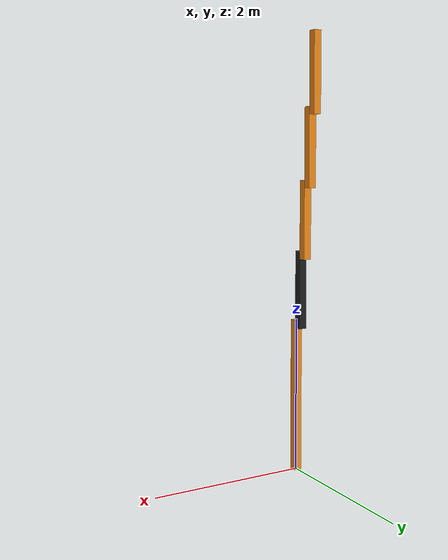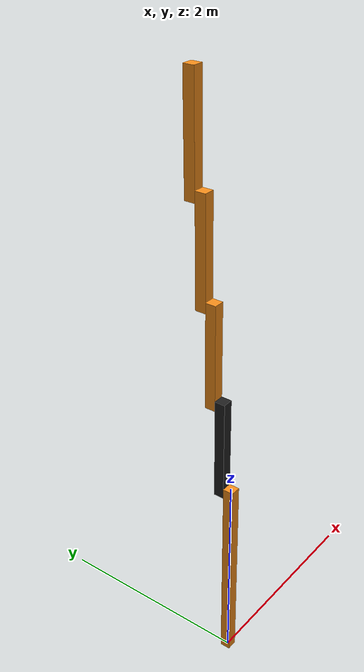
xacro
<?xml version="1.0"?>
<robot name="lilibot" xmlns:xacro="http://www.ros.org/wiki/xacro" >

  <xacro:property name="PI" value="3.1415926535897931" />
  <xacro:property name="mass" value="1" />    <!-- arbitrary value for mass -->
  <xacro:property name="width" value="0.1" />   <!-- Square dimensions (widthxwidth) of beams -->
  <xacro:property name="height1" value="2" />  <!-- Link 1 -->
  <xacro:property name="height2" value="1" />  <!-- Link 2 -->
  <xacro:property name="height3" value="1" />  <!-- Link 3 -->
  <xacro:property name="camera_link" value="0.05" /> <!-- Size of square 'camera' box -->
  <xacro:property name="axel_offset" value="0.05" /> <!-- Space btw top of beam and the each joint -->

  <!-- Import Rviz colors -->
  <xacro:include filename="$(find lilibot)/lilibot_description/urdf/materials.xacro" />

  <!-- Base Link -->
  <link name="link1">
    <collision>
      <origin xyz="0 0 ${height1/2}" rpy="0 0 0"/>
      <geometry>
	<box size="${width} ${width} ${height1}"/>
      </geometry>
    </collision>

    <visual>
      <origin xyz="0 0 ${height1/2}" rpy="0 0 0"/>
      <geometry>
	<box size="${width} ${width} ${height1}"/>
      </geometry>
      <material name="orange"/>
    </visual>

    <inertial>
      <origin xyz="0 0 ${height1/2}" rpy="0 0 0"/>
      <mass value="${mass}"/>
      <inertia
	  ixx="${mass / 12.0 * (width*width + height1*height1)}" ixy="0.0" ixz="0.0"
	  iyy="${mass / 12.0 * (height1*height1 + width*width)}" iyz="0.0"
	  izz="${mass / 12.0 * (width*width + width*width)}"/>
    </inertial>
  </link>

  <joint name="joint1" type="continuous">
    <parent link="link1"/>
    <child link="link2"/>
    <origin xyz="0 ${width} ${height1 - axel_offset}" rpy="0 0 0"/>
    <axis xyz="0 1 0"/>
    <dynamics damping="0.7"/>
  </joint>

  <!-- Middle Link -->
  <link name="link2">
    <collision>
      <origin xyz="0 0 ${height2/2 - axel_offset}" rpy="0 0 0"/>
      <geometry>
	<box size="${width} ${width} ${height2}"/>
      </geometry>
    </collision>

    <visual>
      <origin xyz="0 0 ${height2/2 - axel_offset}" rpy="0 0 0"/>
      <geometry>
	<box size="${width} ${width} ${height2}"/>
      </geometry>
      <material name="black"/>
    </visual>

    <inertial>
      <origin xyz="0 0 ${height2/2 - axel_offset}" rpy="0 0 0"/>
      <mass value="${mass}"/>
      <inertia
	  ixx="${mass / 12.0 * (width*width + height2*height2)}" ixy="0.0" ixz="0.0"
	  iyy="${mass / 12.0 * (height2*height2 + width*width)}" iyz="0.0"
	  izz="${mass / 12.0 * (width*width + width*width)}"/>
    </inertial>
  </link>

  <joint name="joint2" type="continuous">
    <parent link="link2"/>
    <child link="link3"/>
    <origin xyz="0 ${width} ${height2 - axel_offset*2}" rpy="0 0 0"/>
    <axis xyz="0 1 0"/>
    <dynamics damping="0.7"/>
  </joint>

  <!-- Top Link -->
  <link name="link3">
    <collision>
      <origin xyz="0 0 ${height3/2 - axel_offset}" rpy="0 0 0"/>
      <geometry>
	<box size="${width} ${width} ${height3}"/>
      </geometry>
    </collision>

    <visual>
      <origin xyz="0 0 ${height3/2 - axel_offset}" rpy="0 0 0"/>
      <geometry>
	<box size="${width} ${width} ${height3}"/>
      </geometry>
      <material name="orange"/>
    </visual>

    <inertial>
      <origin xyz="0 0 ${height3/2 - axel_offset}" rpy="0 0 0"/>
      <mass value="${mass}"/>
      <inertia
	  ixx="${mass / 12.0 * (width*width + height3*height3)}" ixy="0.0" ixz="0.0"
	  iyy="${mass / 12.0 * (height3*height3 + width*width)}" iyz="0.0"
	  izz="${mass / 12.0 * (width*width + width*width)}"/>
    </inertial>
  </link>

  <joint name="joint3" type="continuous">
    <parent link="link3"/>
    <child link="link4"/>
    <origin xyz="0 ${width} ${height2 - axel_offset*2}" rpy="0 0 0"/>
    <axis xyz="0 1 0"/>
    <dynamics damping="0.7"/>
  </joint>

  <!--  Link 4 -->
  <link name="link4">
    <collision>
      <origin xyz="0 0 ${height3/2 - axel_offset}" rpy="0 0 0"/>
      <geometry>
	<box size="${width} ${width} ${height3}"/>
      </geometry>
    </collision>

    <visual>
      <origin xyz="0 0 ${height3/2 - axel_offset}" rpy="0 0 0"/>
      <geometry>
	<box size="${width} ${width} ${height3}"/>
      </geometry>
      <material name="orange"/>
    </visual>

    <inertial>
      <origin xyz="0 0 ${height3/2 - axel_offset}" rpy="0 0 0"/>
      <mass value="${mass}"/>
      <inertia
	  ixx="${mass / 12.0 * (width*width + height3*height3)}" ixy="0.0" ixz="0.0"
	  iyy="${mass / 12.0 * (height3*height3 + width*width)}" iyz="0.0"
	  izz="${mass / 12.0 * (width*width + width*width)}"/>
    </inertial>
  </link>

  <joint name="joint4" type="continuous">
    <parent link="link4"/>
    <child link="link5"/>
    <origin xyz="0 ${width} ${height2 - axel_offset*2}" rpy="0 0 0"/>
    <axis xyz="0 1 0"/>
    <dynamics damping="0.7"/>
  </joint>

  <!--  Link 5 -->
  <link name="link5">
    <collision>
      <origin xyz="0 0 ${height3/2 - axel_offset}" rpy="0 0 0"/>
      <geometry>
	<box size="${width} ${width} ${height3}"/>
      </geometry>
    </collision>

    <visual>
      <origin xyz="0 0 ${height3/2 - axel_offset}" rpy="0 0 0"/>
      <geometry>
	<box size="${width} ${width} ${height3}"/>
      </geometry>
      <material name="orange"/>
    </visual>

    <inertial>
      <origin xyz="0 0 ${height3/2 - axel_offset}" rpy="0 0 0"/>
      <mass value="${mass}"/>
      <inertia
	  ixx="${mass / 12.0 * (width*width + height3*height3)}" ixy="0.0" ixz="0.0"
	  iyy="${mass / 12.0 * (height3*height3 + width*width)}" iyz="0.0"
	  izz="${mass / 12.0 * (width*width + width*width)}"/>
    </inertial>
  </link>

    <transmission name="simple_trans">
        <type>transmission_interface/SimpleTransmission</type>
        <joint name="joint1">
            <hardwareInterface>EffortJointInterface</hardwareInterface>
        </joint>
        <actuator name="motor1">
            <mechanicalReduction>50</mechanicalReduction>
            <hardwareInterface>EffortJointInterface</hardwareInterface>
        </actuator>
    </transmission>

    <transmission name="simple_trans">
        <type>transmission_interface/SimpleTransmission</type>
        <joint name="joint2">
            <hardwareInterface>EffortJointInterface</hardwareInterface>
        </joint>
        <actuator name="motor2">
            <mechanicalReduction>50</mechanicalReduction>
            <hardwareInterface>EffortJointInterface</hardwareInterface>
        </actuator>
    </transmission>

    <transmission name="simple_trans">
        <type>transmission_interface/SimpleTransmission</type>
        <joint name="joint3">
            <hardwareInterface>EffortJointInterface</hardwareInterface>
        </joint>
        <actuator name="motor3">
            <mechanicalReduction>50</mechanicalReduction>
            <hardwareInterface>EffortJointInterface</hardwareInterface>
        </actuator>
    </transmission>

    <transmission name="simple_trans">
        <type>transmission_interface/SimpleTransmission</type>
        <joint name="joint4">
            <hardwareInterface>EffortJointInterface</hardwareInterface>
        </joint>
        <actuator name="motor4">
            <mechanicalReduction>50</mechanicalReduction>
            <hardwareInterface>EffortJointInterface</hardwareInterface>
        </actuator>
    </transmission>

</robot>
